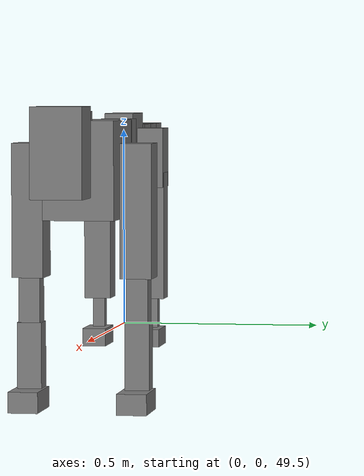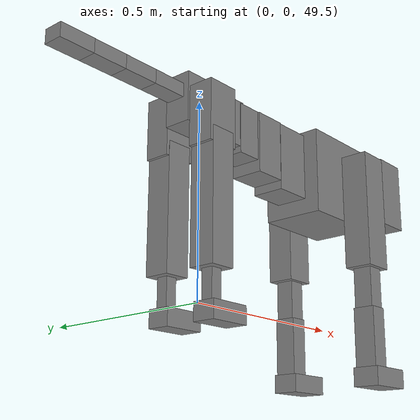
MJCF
<mujoco model="dog">

    <default>
        <joint armature="0.02" stiffness="1" damping="0.2" limited="true"/>
        <geom condim="3" friction="1 0.05 0.05" margin="0.01"/>
        <motor ctrllimited="true" ctrlrange="-1.0 1.0" forcelimited="true" gear="50"/>
    </default>

    <compiler inertiafromgeom="true" angle="radian"/>

    <option timestep="0.016" iterations="50" tolerance="1e-10" solver="Newton" jacobian="dense" cone="pyramidal"/>

    <size nconmax="20000" njmax="60000" nstack="5000000"/>
    <visual>
        <map force="0.1" zfar="30"/>
        <rgba haze="0.15 0.25 0.35 1"/>
        <quality shadowsize="2048"/>
        <global offwidth="800" offheight="800"/>
    </visual>

    <asset>
        <texture type="skybox" builtin="gradient" rgb1="0.3 0.5 0.7" rgb2="0 0 0" width="512" height="512"/>
        <texture name="texplane" type="2d" builtin="checker" rgb1=".2 .3 .4" rgb2=".1 0.15 0.2" width="512" height="512"
                 mark="cross" markrgb=".8 .8 .8"/>
        <texture name="texgeom" type="cube" builtin="flat" mark="cross" width="127" height="1278" rgb1="0.8 0.6 0.4"
                 rgb2="0.8 0.6 0.4" markrgb="1 1 1" random="0.01"/>

        <material name="matplane" reflectance="0.3" texture="texplane" texrepeat="1 1" texuniform="true"/>
        <material name="matgeom" texture="texgeom" texuniform="true" rgba="0.8 0.6 .4 1"/>
    </asset>

    <worldbody>
        <geom name="floor" pos="0 0 0" size="0 0 .25" type="plane" material="matplane" condim="3"/>

        <light directional="false" diffuse=".2 .2 .2" specular="0 0 0" pos="0 0 5" dir="0 0 -1" castshadow="false"/>
        <light mode="targetbodycom" target="torso" directional="false" diffuse=".8 .8 .8" specular="0.3 0.3 0.3"
               pos="0 0 4.0" dir="0 0 -1"/>

        <body name="root" pos="0 0 50">
            <freejoint name="root_1"/>
            <geom type="box" pos="0 0 -0.02" size="0.0774  0.0358  0.063" density="2030"/>

            <body name="spine1" pos="0.054 0 0">
                <joint name="spine1_y" axis="0 1 0" range="0 0.7" limited="true"/>
                <geom type="box" pos="0.02375 0 -0.03" size="0.04375  0.0375  0.05985" density="2030"/>

                <body name="spine2" pos="0.0612 0 0">
                    <joint name="spine2_y" axis="0 1 0" range="-0.15 0.15" limited="true"/>
                    <geom type="box" pos="0.03555  0  -0.04" size="0.04055  0.039  0.06615" density="2030"/>

                    <body name="spine3" pos="0.0730 0 0">
                        <joint name="spine3_y" axis="0 1 0" range="-0.15 0.15" limited="true"/>
                        <geom type="box" pos="0.03555  0  -0.057" size="0.04555  0.0445  0.081" density="2030"/>

                        <body name="spine4" pos="0.0780 0 0">
                            <joint name="spine4_y" axis="0 1 0" range="-0.15 0.15" limited="true"/>
                            <geom type="box" pos="0.05265  0  -0.07" size="0.05265  0.045  0.09135" density="2030"/>

                            <body name="torso" pos="0.1082 0 0">
                                <joint name="torso_y" axis="0 1 0" range="-0.15 0.15" limited="true"/>
                                <geom type="box" pos="0.11925  0  -0.085" size="0.11925  0.085  0.11745"
                                      density="2030"/>

                                <body name="neck1" pos="0.2160  0   0.0180">
                                    <joint name="neck1_y" axis="0 1 0" range="-1.2  -1" limited="true"/>
                                    <geom type="box" pos="0.0423  0  0" size="0.0423  0.03  0.036" density="2325"/>

                                    <body name="neck2" pos="0.0853  0  0">
                                        <joint name="neck2_y" axis="0 1 0" range="0.1  0" limited="true"/>
                                        <geom type="box" pos="0.0423  0  0" size="0.0423  0.03  0.036" density="2325"/>

                                        <body name="head" pos="0.0853  0  0">
                                            <joint name="head_y" axis="0 1 0" range="-0.3  -0.2" limited="true"/>
                                            <geom type="box" pos="0.0531  0  -0.055" size="0.0531  0.06  0.1044"
                                                  density="4030"/>

                                        </body>
                                    </body>
                                </body>

                                <body name="front_shoulder" pos="0.156  0   -0.0480">
                                    <joint name="front_shoulder_y" axis="0 1 0" range="-1 1.5" limited="true"/>
                                    <geom type="box" pos="0 0.13 -0.1330" size="0.0439  0.0376  0.1596" density="1158"/>
                                    <geom type="box" pos="0 -0.13 -0.1330" size="0.0439  0.0376  0.1596"
                                          density="1158"/>

                                    <body name="front_elbow" pos="0  0  -0.2660">
                                        <joint name="front_elbow_y" axis="0 1 0" range="-2 0" limited="true"/>
                                        <geom type="box" pos="0 0.13 -0.0738" size="0.0249  0.0254  0.0738"
                                              density="1081"/>
                                        <geom type="box" pos="0 -0.13 -0.0738" size="0.0249  0.0254  0.0738"
                                              density="1081"/>

                                        <body name="front_wrist" pos="0  0  -0.1476">
                                            <joint name="front_wrist_y" axis="0 1 0" range="-0.2 0" limited="true"/>
                                            <geom type="box" pos="0 0.13 -0.0799" size="0.0265  0.0294  0.0931"
                                                  density="1664"/>
                                            <geom type="box" pos="0 -0.13 -0.0799" size="0.0265  0.0294  0.0931"
                                                  density="1664"/>

                                            <body name="front_finger_end" pos="0  0  -0.1598">
                                                <joint name="front_finger_y" axis="0 1 0" range="-0.4 1"
                                                       limited="true"/>
                                                <geom type="box" pos="0.0357  0.13  -0.0101"
                                                      size="0.0655  0.0357  0.0251" density="1515"/>
                                                <geom type="box" pos="0.0357  -0.13  -0.0101"
                                                      size="0.0655  0.0357  0.0251" density="1515"/>

                                            </body>

                                        </body>
                                    </body>
                                </body>

                            </body>
                        </body>
                    </body>
                </body>
            </body>

            <body name="back_hip" pos="-0.03 0 -0.018">
                <joint name="back_hip_y" axis="0 1 0" range="-1.5 0.3" limited="true"/>
                <geom type="box" pos="0 0.07 -0.0537" size="0.0428  0.0336  0.0765" density="1154"/>
                <geom type="box" pos="0 -0.07 -0.0537" size="0.0428  0.0336  0.0765" density="1154"/>

                <body name="back_knee" pos="0  0  -0.1075">
                    <joint name="back_knee_y" axis="0 1 0" range="0 2.8" limited="true"/>
                    <geom type="box" pos="0 0.07 -0.1476" size="0.0344  0.0339  0.1631" density="1227"/>
                    <geom type="box" pos="0 -0.07 -0.1476" size="0.0344  0.0339  0.1631" density="1227"/>

                    <body name="back_ankle" pos="0  0  -0.2951">
                        <joint name="back_ankle_y" axis="0 1 0" range="-2.2 0" limited="true"/>
                        <geom type="box" pos="0 0.07 -0.0527" size="0.0152  0.0152  0.0640" density="1284"/>
                        <geom type="box" pos="0 -0.07 -0.0527" size="0.0152  0.0152  0.0640" density="1284"/>

                        <body name="back_toe_end" pos="0  0  -0.1055">
                            <joint name="back_toe_y" axis="0 1 0" range="-0.4 1" limited="true"/>
                            <geom type="box" pos="0.0299  0.07  -0.0076" size="0.0549  0.0299  0.0226" density="1515"/>
                            <geom type="box" pos="0.0299  -0.07  -0.0076" size="0.0549  0.0299  0.0226" density="1515"/>

                        </body>
                    </body>
                </body>
            </body>

            <body name="tail1" pos="-0.074 0 -0.006">
                <joint name="tail1_y" axis="0 1 0" range="-0.2 0.2" limited="true"/>
                <geom type="box" pos="-0.0536  0  0" size="0.045  0.025  0.0175" density="1587"/>

                <body name="tail2" pos="-0.09 0 0">
                    <joint name="tail2_y" axis="0 1 0" range="-0.2 0.2" limited="true"/>
                    <geom type="box" pos="-0.0536  0  0" size="0.045  0.025  0.0175" density="1587"/>

                    <body name="tail3" pos="-0.09 0 0">
                        <joint name="tail3_y" axis="0 1 0" range="-0.2 0.2" limited="true"/>
                        <geom type="box" pos="-0.0536  0  0" size="0.045  0.025  0.0175" density="1587"/>

                        <body name="tail4" pos="-0.09 0 0">
                            <joint name="tail4_y" axis="0 1 0" range="-0.2 0.2" limited="true"/>
                            <geom type="box" pos="-0.0536  0  0" size="0.045  0.025  0.0175" density="1587"/>

                        </body>
                    </body>
                </body>
            </body>
        </body>
    </worldbody>

    <actuator>
        <motor joint="spine1_y" forcerange="-150 150     "/>
        <motor joint="spine2_y" forcerange="-150 150     "/>
        <motor joint="spine3_y" forcerange="-150 150     "/>
        <motor joint="spine4_y" forcerange="-150 150     "/>
        <motor joint="torso_y" forcerange="-150 150     "/>
        <motor joint="neck1_y" forcerange="-100 100       "/>
        <motor joint="neck2_y" forcerange="-100 100       "/>
        <motor joint="head_y" forcerange="-150 150       "/>
        <motor joint="front_shoulder_y" forcerange="-178.34 171.99"/>
        <motor joint="front_elbow_y" forcerange="-153.32 131.45"/>
        <motor joint="front_wrist_y" forcerange="-99.40 135.73"/>
        <motor joint="front_finger_y" forcerange="-91.38 59.22"/>
        <motor joint="back_hip_y" forcerange="-331.54 316.14"/>
        <motor joint="back_knee_y" forcerange="-316.67 376.11"/>
        <motor joint="back_angle_y" forcerange="-62.43 81.28"/>
        <motor joint="back_toe_y" forcerange="-48.97 110.57"/>
        <motor joint="tail1_y" forcerange="-50 50     "/>
        <motor joint="tail2_y" forcerange="-50 50     "/>
        <motor joint="tail3_y" forcerange="-50 50     "/>
        <motor joint="tail4_y" forcerange="-50 50     "/>
    </actuator>
</mujoco>
